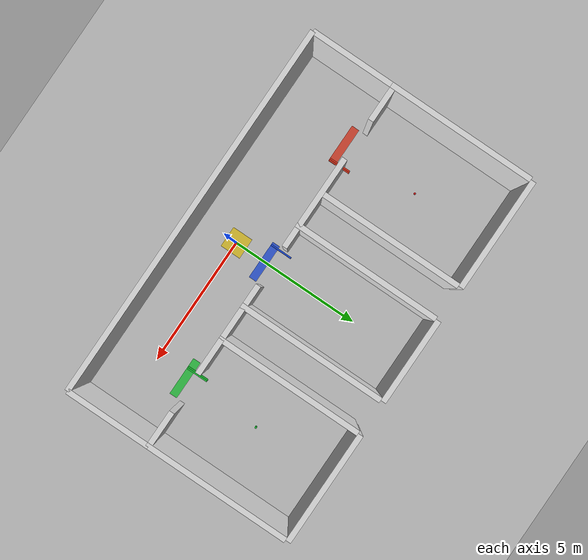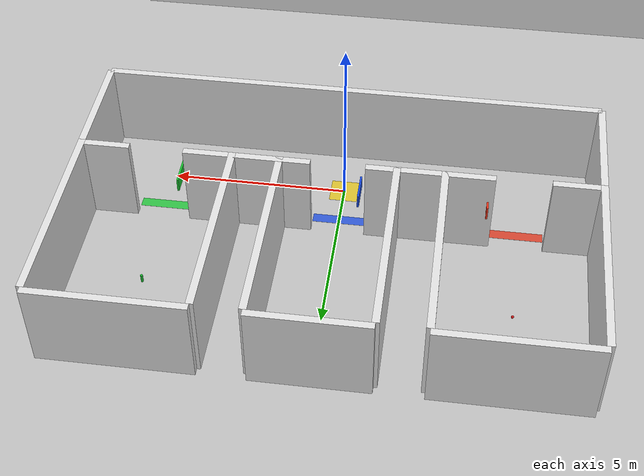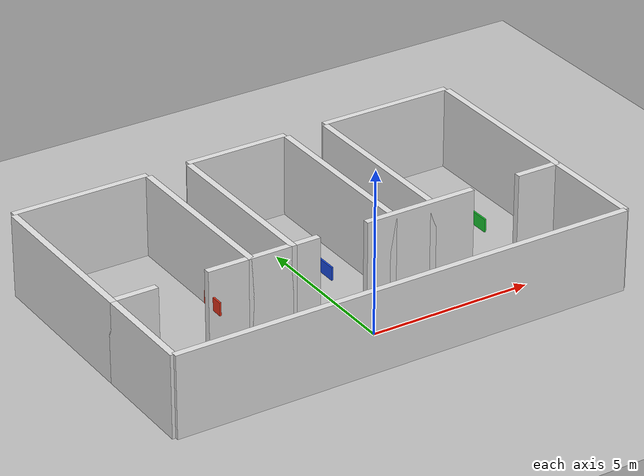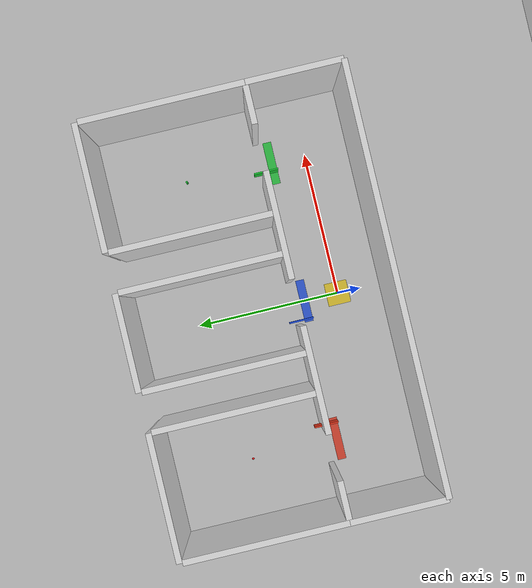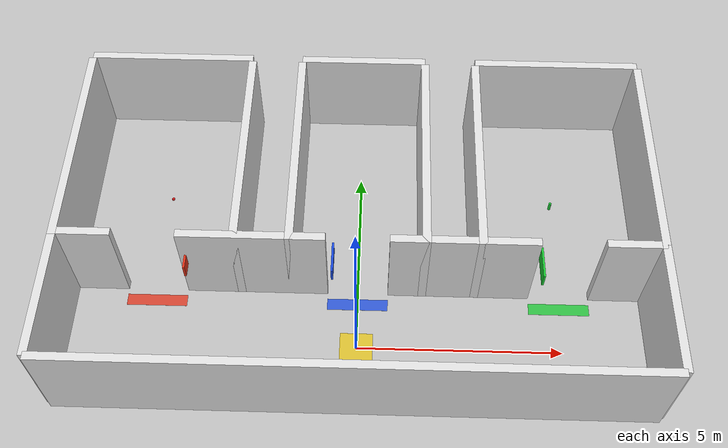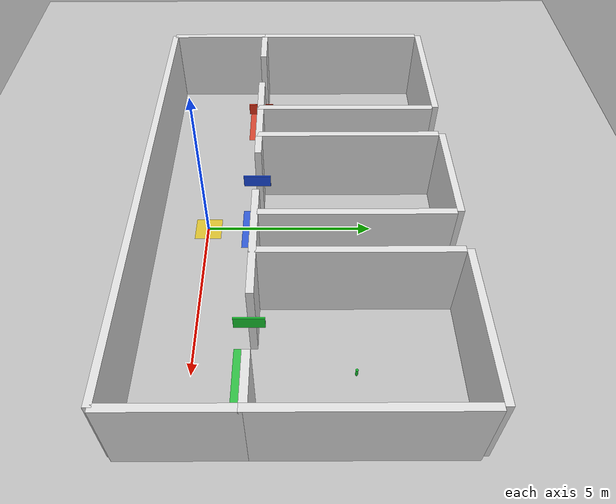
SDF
<?xml version="1.0"?>
<sdf version="1.9">
  <world name="three_room_world">

    <!-- ── Physics ──────────────────────────────────────────────────────────── -->
    <physics name="default_physics" type="ode">
      <max_step_size>0.001</max_step_size>
      <real_time_factor>1.0</real_time_factor>
    </physics>

    <!-- ── Plugins ───────────────────────────────────────────────────────────── -->
    <plugin filename="gz-sim-physics-system"        name="gz::sim::systems::Physics"/>
    <plugin filename="gz-sim-user-commands-system"  name="gz::sim::systems::UserCommands"/>
    <plugin filename="gz-sim-scene-broadcaster-system" name="gz::sim::systems::SceneBroadcaster"/>
    <plugin filename="gz-sim-sensors-system"        name="gz::sim::systems::Sensors">
      <render_engine>ogre2</render_engine>
    </plugin>
    <plugin filename="gz-sim-contact-system"        name="gz::sim::systems::Contact"/>

    <!-- ── Lighting ──────────────────────────────────────────────────────────── -->
    <light name="sun" type="directional">
      <cast_shadows>true</cast_shadows>
      <pose>0 0 15 0 0 0</pose>
      <diffuse>0.9 0.9 0.9 1</diffuse>
      <specular>0.3 0.3 0.3 1</specular>
      <direction>-0.3 0.1 -0.9</direction>
    </light>

    <!-- ── Ground plane ──────────────────────────────────────────────────────── -->
    <model name="ground_plane">
      <static>true</static>
      <link name="link">
        <collision name="collision">
          <geometry><plane><normal>0 0 1</normal><size>30 20</size></plane></geometry>
        </collision>
        <visual name="visual">
          <geometry><plane><normal>0 0 1</normal><size>30 20</size></plane></geometry>
          <material>
            <ambient>0.75 0.75 0.75 1</ambient>
            <diffuse>0.75 0.75 0.75 1</diffuse>
          </material>
        </visual>
      </link>
    </model>

    <!-- ── CORRIDOR outer walls ─────────────────────────────────────────────── -->

    <!-- South corridor wall (y = -1.5) -->
    <model name="wall_corridor_south">
      <static>true</static>
      <pose>0 -1.6 1.25 0 0 0</pose>
      <link name="link">
        <collision name="col"><geometry><box><size>14.2 0.2 2.5</size></box></geometry></collision>
        <visual name="vis">
          <geometry><box><size>14.2 0.2 2.5</size></box></geometry>
          <material><ambient>0.88 0.88 0.88 1</ambient><diffuse>0.88 0.88 0.88 1</diffuse></material>
        </visual>
      </link>
    </model>

    <!-- West corridor end cap (x = -7) -->
    <model name="wall_corridor_west">
      <static>true</static>
      <pose>-7.1 0 1.25 0 0 0</pose>
      <link name="link">
        <collision name="col"><geometry><box><size>0.2 3.2 2.5</size></box></geometry></collision>
        <visual name="vis">
          <geometry><box><size>0.2 3.2 2.5</size></box></geometry>
          <material><ambient>0.88 0.88 0.88 1</ambient><diffuse>0.88 0.88 0.88 1</diffuse></material>
        </visual>
      </link>
    </model>

    <!-- East corridor end cap (x = 7) -->
    <model name="wall_corridor_east">
      <static>true</static>
      <pose>7.1 0 1.25 0 0 0</pose>
      <link name="link">
        <collision name="col"><geometry><box><size>0.2 3.2 2.5</size></box></geometry></collision>
        <visual name="vis">
          <geometry><box><size>0.2 3.2 2.5</size></box></geometry>
          <material><ambient>0.88 0.88 0.88 1</ambient><diffuse>0.88 0.88 0.88 1</diffuse></material>
        </visual>
      </link>
    </model>

    <!-- Section west of door 1: x ∈ [-7, -5.75]  len=1.25, centre=-6.375 -->
    <model name="wall_north_w1">
      <static>true</static>
      <pose>-6.375 1.6 1.25 0 0 0</pose>
      <link name="link">
        <collision name="col"><geometry><box><size>1.25 0.2 2.5</size></box></geometry></collision>
        <visual name="vis">
          <geometry><box><size>1.25 0.2 2.5</size></box></geometry>
          <material><ambient>0.88 0.88 0.88 1</ambient><diffuse>0.88 0.88 0.88 1</diffuse></material>
        </visual>
      </link>
    </model>

    <!-- Section door1–door2: x ∈ [-4.25, -0.75]  len=3.5, centre=-2.5 -->
    <model name="wall_north_mid1">
      <static>true</static>
      <pose>-2.5 1.6 1.25 0 0 0</pose>
      <link name="link">
        <collision name="col"><geometry><box><size>3.5 0.2 2.5</size></box></geometry></collision>
        <visual name="vis">
          <geometry><box><size>3.5 0.2 2.5</size></box></geometry>
          <material><ambient>0.88 0.88 0.88 1</ambient><diffuse>0.88 0.88 0.88 1</diffuse></material>
        </visual>
      </link>
    </model>

    <!-- Section door2–door3: x ∈ [0.75, 4.25]  len=3.5, centre=2.5 -->
    <model name="wall_north_mid2">
      <static>true</static>
      <pose>2.5 1.6 1.25 0 0 0</pose>
      <link name="link">
        <collision name="col"><geometry><box><size>3.5 0.2 2.5</size></box></geometry></collision>
        <visual name="vis">
          <geometry><box><size>3.5 0.2 2.5</size></box></geometry>
          <material><ambient>0.88 0.88 0.88 1</ambient><diffuse>0.88 0.88 0.88 1</diffuse></material>
        </visual>
      </link>
    </model>

    <!-- Section east of door 3: x ∈ [5.75, 7]  len=1.25, centre=6.375 -->
    <model name="wall_north_e3">
      <static>true</static>
      <pose>6.375 1.6 1.25 0 0 0</pose>
      <link name="link">
        <collision name="col"><geometry><box><size>1.25 0.2 2.5</size></box></geometry></collision>
        <visual name="vis">
          <geometry><box><size>1.25 0.2 2.5</size></box></geometry>
          <material><ambient>0.88 0.88 0.88 1</ambient><diffuse>0.88 0.88 0.88 1</diffuse></material>
        </visual>
      </link>
    </model>

    <!-- ── ROOM 1  (x ∈ [-7,-3],  y ∈ [1.5,7]) ─────────────────────────────── -->

    <model name="wall_r1_north">
      <static>true</static>
      <pose>-5 7.1 1.25 0 0 0</pose>
      <link name="link">
        <collision name="col"><geometry><box><size>4.2 0.2 2.5</size></box></geometry></collision>
        <visual name="vis">
          <geometry><box><size>4.2 0.2 2.5</size></box></geometry>
          <material><ambient>0.88 0.88 0.88 1</ambient><diffuse>0.88 0.88 0.88 1</diffuse></material>
        </visual>
      </link>
    </model>

    <model name="wall_r1_west">
      <static>true</static>
      <pose>-7.1 4.25 1.25 0 0 0</pose>
      <link name="link">
        <collision name="col"><geometry><box><size>0.2 5.5 2.5</size></box></geometry></collision>
        <visual name="vis">
          <geometry><box><size>0.2 5.5 2.5</size></box></geometry>
          <material><ambient>0.88 0.88 0.88 1</ambient><diffuse>0.88 0.88 0.88 1</diffuse></material>
        </visual>
      </link>
    </model>

    <!-- East wall of room 1 / west wall of gap (x=-3) -->
    <model name="wall_r1_east">
      <static>true</static>
      <pose>-2.9 4.25 1.25 0 0 0</pose>
      <link name="link">
        <collision name="col"><geometry><box><size>0.2 5.5 2.5</size></box></geometry></collision>
        <visual name="vis">
          <geometry><box><size>0.2 5.5 2.5</size></box></geometry>
          <material><ambient>0.88 0.88 0.88 1</ambient><diffuse>0.88 0.88 0.88 1</diffuse></material>
        </visual>
      </link>
    </model>

    <!-- ── ROOM 2  (x ∈ [-1.5,1.5],  y ∈ [1.5,7]) ──────────────────────────── -->

    <model name="wall_r2_north">
      <static>true</static>
      <pose>0 7.1 1.25 0 0 0</pose>
      <link name="link">
        <collision name="col"><geometry><box><size>3.2 0.2 2.5</size></box></geometry></collision>
        <visual name="vis">
          <geometry><box><size>3.2 0.2 2.5</size></box></geometry>
          <material><ambient>0.88 0.88 0.88 1</ambient><diffuse>0.88 0.88 0.88 1</diffuse></material>
        </visual>
      </link>
    </model>

    <model name="wall_r2_west">
      <static>true</static>
      <pose>-1.6 4.25 1.25 0 0 0</pose>
      <link name="link">
        <collision name="col"><geometry><box><size>0.2 5.5 2.5</size></box></geometry></collision>
        <visual name="vis">
          <geometry><box><size>0.2 5.5 2.5</size></box></geometry>
          <material><ambient>0.88 0.88 0.88 1</ambient><diffuse>0.88 0.88 0.88 1</diffuse></material>
        </visual>
      </link>
    </model>

    <model name="wall_r2_east">
      <static>true</static>
      <pose>1.6 4.25 1.25 0 0 0</pose>
      <link name="link">
        <collision name="col"><geometry><box><size>0.2 5.5 2.5</size></box></geometry></collision>
        <visual name="vis">
          <geometry><box><size>0.2 5.5 2.5</size></box></geometry>
          <material><ambient>0.88 0.88 0.88 1</ambient><diffuse>0.88 0.88 0.88 1</diffuse></material>
        </visual>
      </link>
    </model>

    <!-- ── ROOM 3  (x ∈ [3,7],  y ∈ [1.5,7]) ───────────────────────────────── -->

    <model name="wall_r3_north">
      <static>true</static>
      <pose>5 7.1 1.25 0 0 0</pose>
      <link name="link">
        <collision name="col"><geometry><box><size>4.2 0.2 2.5</size></box></geometry></collision>
        <visual name="vis">
          <geometry><box><size>4.2 0.2 2.5</size></box></geometry>
          <material><ambient>0.88 0.88 0.88 1</ambient><diffuse>0.88 0.88 0.88 1</diffuse></material>
        </visual>
      </link>
    </model>

    <model name="wall_r3_west">
      <static>true</static>
      <pose>2.9 4.25 1.25 0 0 0</pose>
      <link name="link">
        <collision name="col"><geometry><box><size>0.2 5.5 2.5</size></box></geometry></collision>
        <visual name="vis">
          <geometry><box><size>0.2 5.5 2.5</size></box></geometry>
          <material><ambient>0.88 0.88 0.88 1</ambient><diffuse>0.88 0.88 0.88 1</diffuse></material>
        </visual>
      </link>
    </model>

    <model name="wall_r3_east">
      <static>true</static>
      <pose>7.1 4.25 1.25 0 0 0</pose>
      <link name="link">
        <collision name="col"><geometry><box><size>0.2 5.5 2.5</size></box></geometry></collision>
        <visual name="vis">
          <geometry><box><size>0.2 5.5 2.5</size></box></geometry>
          <material><ambient>0.88 0.88 0.88 1</ambient><diffuse>0.88 0.88 0.88 1</diffuse></material>
        </visual>
      </link>
    </model>

    <!-- Sign — ROOM 1 (red/warm)  mounted east of doorway, x=-4.25, y=1.6 -->
    <model name="sign_room1">
      <static>true</static>
      <pose>-4.1 1.55 1.5 0 0 0</pose>
      <link name="link">
        <collision name="col"><geometry><box><size>0.05 0.8 0.4</size></box></geometry></collision>
        <visual name="vis">
          <geometry><box><size>0.05 0.8 0.4</size></box></geometry>
          <material><ambient>0.9 0.2 0.1 1</ambient><diffuse>0.9 0.2 0.1 1</diffuse></material>
        </visual>
      </link>
    </model>

    <!-- Sign — ROOM 2 (blue)  mounted west of doorway, x=-0.75, y=1.6 -->
    <model name="sign_room2">
      <static>true</static>
      <pose>-0.6 1.55 1.5 0 0 0</pose>
      <link name="link">
        <collision name="col"><geometry><box><size>0.05 0.8 0.4</size></box></geometry></collision>
        <visual name="vis">
          <geometry><box><size>0.05 0.8 0.4</size></box></geometry>
          <material><ambient>0.1 0.3 0.9 1</ambient><diffuse>0.1 0.3 0.9 1</diffuse></material>
        </visual>
      </link>
    </model>

    <!-- Sign — ROOM 3 (green)  mounted west of doorway, x=4.25, y=1.6 -->
    <model name="sign_room3">
      <static>true</static>
      <pose>4.4 1.55 1.5 0 0 0</pose>
      <link name="link">
        <collision name="col"><geometry><box><size>0.05 0.8 0.4</size></box></geometry></collision>
        <visual name="vis">
          <geometry><box><size>0.05 0.8 0.4</size></box></geometry>
          <material><ambient>0.1 0.8 0.2 1</ambient><diffuse>0.1 0.8 0.2 1</diffuse></material>
        </visual>
      </link>
    </model>

    <model name="floor_mark_room1">
      <static>true</static>
      <pose>-5 1.2 0.002 0 0 0</pose>
      <link name="link">
        <visual name="vis">
          <geometry><box><size>1.5 0.3 0.004</size></box></geometry>
          <material><ambient>0.9 0.2 0.1 0.8</ambient><diffuse>0.9 0.2 0.1 0.8</diffuse></material>
        </visual>
      </link>
    </model>

    <model name="floor_mark_room2">
      <static>true</static>
      <pose>0 1.2 0.002 0 0 0</pose>
      <link name="link">
        <visual name="vis">
          <geometry><box><size>1.5 0.3 0.004</size></box></geometry>
          <material><ambient>0.1 0.3 0.9 0.8</ambient><diffuse>0.1 0.3 0.9 0.8</diffuse></material>
        </visual>
      </link>
    </model>

    <model name="floor_mark_room3">
      <static>true</static>
      <pose>5 1.2 0.002 0 0 0</pose>
      <link name="link">
        <visual name="vis">
          <geometry><box><size>1.5 0.3 0.004</size></box></geometry>
          <material><ambient>0.1 0.8 0.2 0.8</ambient><diffuse>0.1 0.8 0.2 0.8</diffuse></material>
        </visual>
      </link>
    </model>

    <!-- apple — Room 1 centre (-5, 4.25) -->
    <model name="apple">
      <pose>-5.0 4.25 0.04 0 0 0</pose>
      <link name="link">
        <inertial>
          <mass>0.2</mass>
          <inertia><ixx>0.0001</ixx><ixy>0</ixy><ixz>0</ixz>
                   <iyy>0.0001</iyy><iyz>0</iyz><izz>0.0001</izz></inertia>
        </inertial>
        <collision name="col">
          <geometry><sphere><radius>0.04</radius></sphere></geometry>
        </collision>
        <visual name="vis">
          <geometry><sphere><radius>0.04</radius></sphere></geometry>
          <material><ambient>0.85 0.1 0.1 1</ambient><diffuse>0.85 0.1 0.1 1</diffuse></material>
        </visual>
      </link>
    </model>

    <!-- mug — Room 2 centre (0, 4.25) -->
    <model name="mug">
      <pose>0.0 4.25 0.06 0 0 0</pose>
      <link name="link">
        <inertial>
          <mass>0.3</mass>
          <inertia><ixx>0.0002</ixx><ixy>0</ixy><ixz>0</ixz>
                   <iyy>0.0002</iyy><iyz>0</iyz><izz>0.0001</izz></inertia>
        </inertial>
        <collision name="col">
          <geometry><cylinder><radius>0.04</radius><length>0.12</length></cylinder></geometry>
        </collision>
        <visual name="vis">
          <geometry><cylinder><radius>0.04</radius><length>0.12</length></cylinder></geometry>
          <material><ambient>0.2 0.4 0.85 1</ambient><diffuse>0.2 0.4 0.85 1</diffuse></material>
        </visual>
      </link>
    </model>

    <!-- bottle — Room 3 centre (5, 4.25) -->
    <model name="bottle">
      <pose>5.0 4.25 0.12 0 0 0</pose>
      <link name="link">
        <inertial>
          <mass>0.5</mass>
          <inertia><ixx>0.0005</ixx><ixy>0</ixy><ixz>0</ixz>
                   <iyy>0.0005</iyy><iyz>0</iyz><izz>0.0001</izz></inertia>
        </inertial>
        <collision name="col">
          <geometry><cylinder><radius>0.035</radius><length>0.24</length></cylinder></geometry>
        </collision>
        <visual name="vis">
          <geometry><cylinder><radius>0.035</radius><length>0.24</length></cylinder></geometry>
          <material><ambient>0.1 0.75 0.2 1</ambient><diffuse>0.1 0.75 0.2 1</diffuse></material>
        </visual>
      </link>
    </model>

    <model name="base_marker">
      <static>true</static>
      <pose>0.0 0.0 0.001 0 0 0</pose>
      <link name="link">
        <visual name="vis">
          <geometry><box><size>0.8 0.8 0.002</size></box></geometry>
          <material><ambient>0.95 0.8 0.0 0.7</ambient><diffuse>0.95 0.8 0.0 0.7</diffuse></material>
        </visual>
      </link>
    </model>

  </world>
</sdf>
